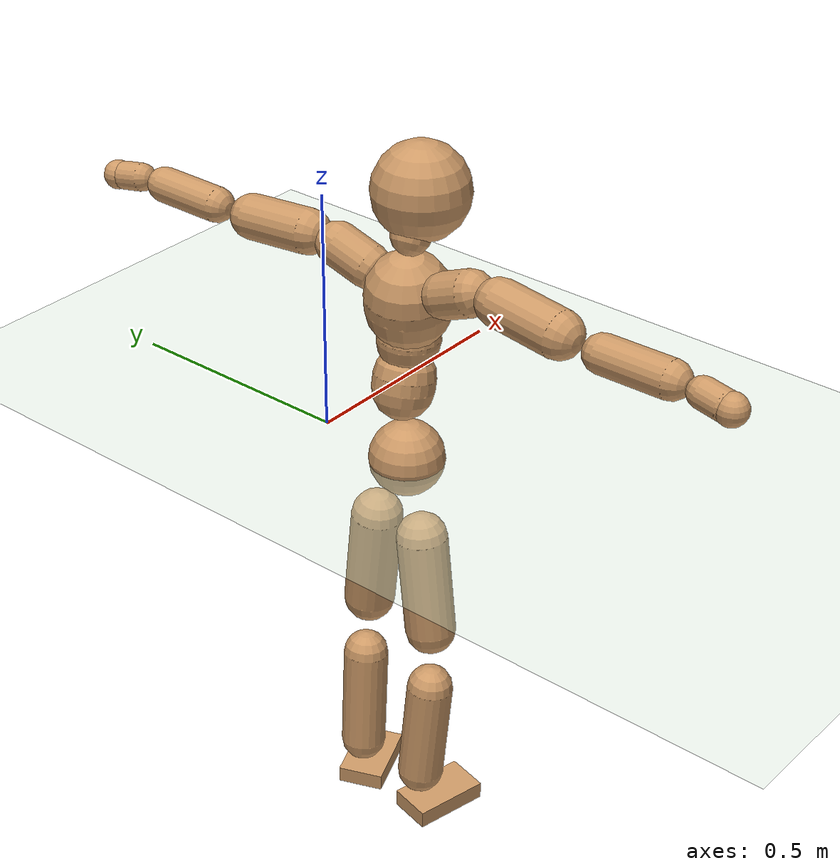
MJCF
<mujoco model="humanoid">
  <compiler coordinate="local" angle="radian"/>
  <default>
    <joint damping="0.0" armature="0.01" stiffness="0.0" limited="true"/>
    <geom conaffinity="1" condim="3" contype="7" margin="0.001" rgba="0.8 0.6 .4 1"/>
  </default>
  <asset>
    <texture type="skybox" builtin="gradient" rgb1=".4 .5 .6" rgb2="0 0 0" width="100" height="100"/>
    <texture builtin="flat" height="1278" mark="cross" markrgb="1 1 1" name="texgeom" random="0.01" rgb1="0.8 0.6 0.4" rgb2="0.8 0.6 0.4" type="cube" width="127"/>
    <texture builtin="checker" height="100" name="texplane" rgb1="0 0 0" rgb2="0.8 0.8 0.8" type="2d" width="100"/>
    <material name="MatPlane" reflectance="0.5" shininess="1" specular="1" texrepeat="60 60" texture="texplane"/>
    <material name="geom" texture="texgeom" texuniform="true"/>
  </asset>
  <worldbody>
    <light cutoff="100" diffuse="1 1 1" dir="-0 0 -1.3" directional="true" exponent="1" pos="0 0 1.3" specular=".1 .1 .1"/>
    <geom conaffinity="1" condim="3" name="floor" pos="0 0 0" rgba="0.8 0.9 0.8 1" size="100 100 .2" type="plane" material="MatPlane"/>
    <body name="Pelvis" pos="-0.0008 -0.2101 0.0058">
      <freejoint name="Pelvis"/>
      <geom type="sphere" contype="1" conaffinity="1" density="500" size="0.0766" pos="0.0000 0.0000 0.0000" name="Pelvis"/>
      <body name="L_Hip" pos="-0.0253 0.048 -0.0732">
        <joint name="L_Hip_x" type="hinge" pos="0 0 0" axis="1 0 0" stiffness="800" damping="80" armature="0.02" range="-180.0000 180.0000"/>
        <joint name="L_Hip_y" type="hinge" pos="0 0 0" axis="0 1 0" stiffness="800" damping="80" armature="0.02" range="-180.0000 180.0000"/>
        <joint name="L_Hip_z" type="hinge" pos="0 0 0" axis="0 0 1" stiffness="800" damping="80" armature="0.02" range="-180.0000 180.0000"/>
        <geom type="capsule" contype="1" conaffinity="1" density="500" fromto="0.0017 0.0089 -0.0732 0.0067 0.0357 -0.2928" size="0.0526" name="L_Hip"/>
        <body name="L_Knee" pos="0.0084 0.0447 -0.366">
          <joint name="L_Knee_x" type="hinge" pos="0 0 0" axis="1 0 0" stiffness="800" damping="80" armature="0.02" range="-180.0000 180.0000"/>
          <joint name="L_Knee_y" type="hinge" pos="0 0 0" axis="0 1 0" stiffness="800" damping="80" armature="0.02" range="-180.0000 180.0000"/>
          <joint name="L_Knee_z" type="hinge" pos="0 0 0" axis="0 0 1" stiffness="800" damping="80" armature="0.02" range="-180.0000 180.0000"/>
          <geom type="capsule" contype="1" conaffinity="1" density="500" fromto="-0.0061 -0.0020 -0.0743 -0.0244 -0.0081 -0.2971" size="0.0469" name="L_Knee"/>
          <body name="L_Ankle" pos="-0.0305 -0.0101 -0.3714">
            <joint name="L_Ankle_x" type="hinge" pos="0 0 0" axis="1 0 0" stiffness="800" damping="80" armature="0.02" range="-180.0000 180.0000"/>
            <joint name="L_Ankle_y" type="hinge" pos="0 0 0" axis="0 1 0" stiffness="800" damping="80" armature="0.02" range="-180.0000 180.0000"/>
            <joint name="L_Ankle_z" type="hinge" pos="0 0 0" axis="0 0 1" stiffness="800" damping="80" armature="0.02" range="-180.0000 180.0000"/>
            <geom type="box" contype="1" conaffinity="1" density="500" pos="0.0532 0.0214 -0.0267" size="0.0748 0.0481 0.018" quat="0.9818 0.0000 0.0000 0.1898" name="L_Ankle"/>
            <body name="L_Toe" pos="0.1063 0.0427 -0.0533">
              <joint name="L_Toe_x" type="hinge" pos="0 0 0" axis="1 0 0" stiffness="500" damping="50" armature="0.02" range="-180.0000 180.0000"/>
              <joint name="L_Toe_y" type="hinge" pos="0 0 0" axis="0 1 0" stiffness="500" damping="50" armature="0.02" range="-180.0000 180.0000"/>
              <joint name="L_Toe_z" type="hinge" pos="0 0 0" axis="0 0 1" stiffness="500" damping="50" armature="0.02" range="-180.0000 180.0000"/>
              <geom type="box" contype="1" conaffinity="1" density="500" pos="0.0000 0.0000 0.0279" size="0.001 0.0023 0.001" quat="0.9809 0.0000 0.0000 0.1945" name="L_Toe"/>
            </body>
          </body>
        </body>
      </body>
      <body name="R_Hip" pos="-0.0231 -0.0505 -0.0803">
        <joint name="R_Hip_x" type="hinge" pos="0 0 0" axis="1 0 0" stiffness="800" damping="80" armature="0.02" range="-180.0000 180.0000"/>
        <joint name="R_Hip_y" type="hinge" pos="0 0 0" axis="0 1 0" stiffness="800" damping="80" armature="0.02" range="-180.0000 180.0000"/>
        <joint name="R_Hip_z" type="hinge" pos="0 0 0" axis="0 0 1" stiffness="800" damping="80" armature="0.02" range="-180.0000 180.0000"/>
        <geom type="capsule" contype="1" conaffinity="1" density="500" fromto="-0.0005 -0.0085 -0.0714 -0.0019 -0.0342 -0.2858" size="0.0518" name="R_Hip"/>
        <body name="R_Knee" pos="-0.0023 -0.0427 -0.3572">
          <joint name="R_Knee_x" type="hinge" pos="0 0 0" axis="1 0 0" stiffness="800" damping="80" armature="0.02" range="-180.0000 180.0000"/>
          <joint name="R_Knee_y" type="hinge" pos="0 0 0" axis="0 1 0" stiffness="800" damping="80" armature="0.02" range="-180.0000 180.0000"/>
          <joint name="R_Knee_z" type="hinge" pos="0 0 0" axis="0 0 1" stiffness="800" damping="80" armature="0.02" range="-180.0000 180.0000"/>
          <geom type="capsule" contype="1" conaffinity="1" density="500" fromto="-0.0055 0.0031 -0.0729 -0.0222 0.0126 -0.2917" size="0.0477" name="R_Knee"/>
          <body name="R_Ankle" pos="-0.0277 0.0157 -0.3647">
            <joint name="R_Ankle_x" type="hinge" pos="0 0 0" axis="1 0 0" stiffness="800" damping="80" armature="0.02" range="-180.0000 180.0000"/>
            <joint name="R_Ankle_y" type="hinge" pos="0 0 0" axis="0 1 0" stiffness="800" damping="80" armature="0.02" range="-180.0000 180.0000"/>
            <joint name="R_Ankle_z" type="hinge" pos="0 0 0" axis="0 0 1" stiffness="800" damping="80" armature="0.02" range="-180.0000 180.0000"/>
            <geom type="box" contype="1" conaffinity="1" density="500" pos="0.0570 -0.0130 -0.0286" size="0.0798 0.0454 0.0192" quat="0.9937 0.0000 0.0000 -0.1118" name="R_Ankle"/>
            <body name="R_Toe" pos="0.1141 -0.026 -0.0571">
              <joint name="R_Toe_x" type="hinge" pos="0 0 0" axis="1 0 0" stiffness="500" damping="50" armature="0.02" range="-180.0000 180.0000"/>
              <joint name="R_Toe_y" type="hinge" pos="0 0 0" axis="0 1 0" stiffness="500" damping="50" armature="0.02" range="-180.0000 180.0000"/>
              <joint name="R_Toe_z" type="hinge" pos="0 0 0" axis="0 0 1" stiffness="500" damping="50" armature="0.02" range="-180.0000 180.0000"/>
              <geom type="box" contype="1" conaffinity="1" density="500" pos="0.0000 0.0000 0.0307" size="0.0009 0.0022 0.0011" quat="0.9948 0.0000 0.0000 -0.1017" name="R_Toe"/>
            </body>
          </body>
        </body>
      </body>
      <body name="Torso" pos="-0.0185 0.0036 0.1058">
        <joint name="Torso_x" type="hinge" pos="0 0 0" axis="1 0 0" stiffness="1000" damping="100" armature="0.02" range="-180.0000 180.0000"/>
        <joint name="Torso_y" type="hinge" pos="0 0 0" axis="0 1 0" stiffness="1000" damping="100" armature="0.02" range="-180.0000 180.0000"/>
        <joint name="Torso_z" type="hinge" pos="0 0 0" axis="0 0 1" stiffness="1000" damping="100" armature="0.02" range="-180.0000 180.0000"/>
        <geom type="capsule" contype="1" conaffinity="1" density="500" fromto="0.0177 0.0022 0.0760 0.0118 0.0014 0.0506" size="0.0618" name="Torso"/>
        <body name="Spine" pos="0.0294 0.0036 0.1266">
          <joint name="Spine_x" type="hinge" pos="0 0 0" axis="1 0 0" stiffness="1000" damping="100" armature="0.02" range="-180.0000 180.0000"/>
          <joint name="Spine_y" type="hinge" pos="0 0 0" axis="0 1 0" stiffness="1000" damping="100" armature="0.02" range="-180.0000 180.0000"/>
          <joint name="Spine_z" type="hinge" pos="0 0 0" axis="0 0 1" stiffness="1000" damping="100" armature="0.02" range="-180.0000 180.0000"/>
          <geom type="capsule" contype="1" conaffinity="1" density="500" fromto="0.0009 -0.0008 0.0301 0.0006 -0.0005 0.0200" size="0.0626" name="Spine"/>
          <body name="Chest" pos="0.0015 -0.0014 0.0501">
            <joint name="Chest_x" type="hinge" pos="0 0 0" axis="1 0 0" stiffness="1000" damping="100" armature="0.02" range="-180.0000 180.0000"/>
            <joint name="Chest_y" type="hinge" pos="0 0 0" axis="0 1 0" stiffness="1000" damping="100" armature="0.02" range="-180.0000 180.0000"/>
            <joint name="Chest_z" type="hinge" pos="0 0 0" axis="0 0 1" stiffness="1000" damping="100" armature="0.02" range="-180.0000 180.0000"/>
            <geom type="capsule" contype="1" conaffinity="1" density="500" fromto="-0.0104 -0.0055 0.0745 -0.0069 -0.0037 0.0497" size="0.085" name="Chest"/>
            <body name="Neck" pos="-0.0209 -0.0141 0.1803">
              <joint name="Neck_x" type="hinge" pos="0 0 0" axis="1 0 0" stiffness="500" damping="50" armature="0.02" range="-180.0000 180.0000"/>
              <joint name="Neck_y" type="hinge" pos="0 0 0" axis="0 1 0" stiffness="500" damping="50" armature="0.02" range="-180.0000 180.0000"/>
              <joint name="Neck_z" type="hinge" pos="0 0 0" axis="0 0 1" stiffness="500" damping="50" armature="0.02" range="-180.0000 180.0000"/>
              <geom type="capsule" contype="1" conaffinity="1" density="500" fromto="0.0092 0.0018 0.0179 0.0366 0.0071 0.0717" size="0.04" name="Neck"/>
              <body name="Head" pos="0.0458 0.0088 0.0896">
                <joint name="Head_x" type="hinge" pos="0 0 0" axis="1 0 0" stiffness="500" damping="50" armature="0.02" range="-180.0000 180.0000"/>
                <joint name="Head_y" type="hinge" pos="0 0 0" axis="0 1 0" stiffness="500" damping="50" armature="0.02" range="-180.0000 180.0000"/>
                <joint name="Head_z" type="hinge" pos="0 0 0" axis="0 0 1" stiffness="500" damping="50" armature="0.02" range="-180.0000 180.0000"/>
                <geom type="sphere" contype="1" conaffinity="1" density="500" size="0.0954" pos="0.0000 0.0000 0.0000" name="Head"/>
              </body>
            </body>
            <body name="L_Thorax" pos="-0.0135 0.0649 0.096">
              <joint name="L_Thorax_x" type="hinge" pos="0 0 0" axis="1 0 0" stiffness="500" damping="50" armature="0.02" range="-180.0000 180.0000"/>
              <joint name="L_Thorax_y" type="hinge" pos="0 0 0" axis="0 1 0" stiffness="500" damping="50" armature="0.02" range="-180.0000 180.0000"/>
              <joint name="L_Thorax_z" type="hinge" pos="0 0 0" axis="0 0 1" stiffness="500" damping="50" armature="0.02" range="-180.0000 180.0000"/>
              <geom type="capsule" contype="1" conaffinity="1" density="500" fromto="-0.0027 0.0224 0.0088 -0.0109 0.0894 0.0352" size="0.0443" name="L_Thorax"/>
              <body name="L_Shoulder" pos="-0.0136 0.1118 0.044">
                <joint name="L_Shoulder_x" type="hinge" pos="0 0 0" axis="1 0 0" stiffness="500" damping="50" armature="0.02" range="-720.0000 720.0000"/>
                <joint name="L_Shoulder_y" type="hinge" pos="0 0 0" axis="0 1 0" stiffness="500" damping="50" armature="0.02" range="-720.0000 720.0000"/>
                <joint name="L_Shoulder_z" type="hinge" pos="0 0 0" axis="0 0 1" stiffness="500" damping="50" armature="0.02" range="-720.0000 720.0000"/>
                <geom type="capsule" contype="1" conaffinity="1" density="500" fromto="-0.0025 0.0464 -0.0029 -0.0101 0.1855 -0.0116" size="0.045" name="L_Shoulder"/>
                <body name="L_Elbow" pos="-0.0127 0.2319 -0.0145">
                  <joint name="L_Elbow_x" type="hinge" pos="0 0 0" axis="1 0 0" stiffness="500" damping="50" armature="0.02" range="-720.0000 720.0000"/>
                  <joint name="L_Elbow_y" type="hinge" pos="0 0 0" axis="0 1 0" stiffness="500" damping="50" armature="0.02" range="-720.0000 720.0000"/>
                  <joint name="L_Elbow_z" type="hinge" pos="0 0 0" axis="0 0 1" stiffness="500" damping="50" armature="0.02" range="-720.0000 720.0000"/>
                  <geom type="capsule" contype="1" conaffinity="1" density="500" fromto="-0.0021 0.0459 0.0016 -0.0086 0.1835 0.0062" size="0.0356" name="L_Elbow"/>
                  <body name="L_Wrist" pos="-0.0107 0.2294 0.0078">
                    <joint name="L_Wrist_x" type="hinge" pos="0 0 0" axis="1 0 0" stiffness="300" damping="30" armature="0.02" range="-180.0000 180.0000"/>
                    <joint name="L_Wrist_y" type="hinge" pos="0 0 0" axis="0 1 0" stiffness="300" damping="30" armature="0.02" range="-180.0000 180.0000"/>
                    <joint name="L_Wrist_z" type="hinge" pos="0 0 0" axis="0 0 1" stiffness="300" damping="30" armature="0.02" range="-180.0000 180.0000"/>
                    <geom type="capsule" contype="1" conaffinity="1" density="500" fromto="-0.0026 0.0146 -0.0018 -0.0104 0.0582 -0.0072" size="0.0286" name="L_Wrist"/>
                    <body name="L_Hand" pos="-0.0131 0.0728 -0.009">
                      <joint name="L_Hand_x" type="hinge" pos="0 0 0" axis="1 0 0" stiffness="300" damping="30" armature="0.02" range="-180.0000 180.0000"/>
                      <joint name="L_Hand_y" type="hinge" pos="0 0 0" axis="0 1 0" stiffness="300" damping="30" armature="0.02" range="-180.0000 180.0000"/>
                      <joint name="L_Hand_z" type="hinge" pos="0 0 0" axis="0 0 1" stiffness="300" damping="30" armature="0.02" range="-180.0000 180.0000"/>
                      <geom type="sphere" contype="1" conaffinity="1" density="500" size="0.0299" pos="0.0000 0.0000 0.0000" name="L_Hand"/>
                    </body>
                  </body>
                </body>
              </body>
            </body>
            <body name="R_Thorax" pos="-0.0176 -0.0782 0.0961">
              <joint name="R_Thorax_x" type="hinge" pos="0 0 0" axis="1 0 0" stiffness="500" damping="50" armature="0.02" range="-180.0000 180.0000"/>
              <joint name="R_Thorax_y" type="hinge" pos="0 0 0" axis="0 1 0" stiffness="500" damping="50" armature="0.02" range="-180.0000 180.0000"/>
              <joint name="R_Thorax_z" type="hinge" pos="0 0 0" axis="0 0 1" stiffness="500" damping="50" armature="0.02" range="-180.0000 180.0000"/>
              <geom type="capsule" contype="1" conaffinity="1" density="500" fromto="-0.0010 -0.0207 0.0091 -0.0039 -0.0827 0.0363" size="0.0449" name="R_Thorax"/>
              <body name="R_Shoulder" pos="-0.0049 -0.1034 0.0454">
                <joint name="R_Shoulder_x" type="hinge" pos="0 0 0" axis="1 0 0" stiffness="500" damping="50" armature="0.02" range="-720.0000 720.0000"/>
                <joint name="R_Shoulder_y" type="hinge" pos="0 0 0" axis="0 1 0" stiffness="500" damping="50" armature="0.02" range="-720.0000 720.0000"/>
                <joint name="R_Shoulder_z" type="hinge" pos="0 0 0" axis="0 0 1" stiffness="500" damping="50" armature="0.02" range="-720.0000 720.0000"/>
                <geom type="capsule" contype="1" conaffinity="1" density="500" fromto="-0.0038 -0.0465 -0.0032 -0.0154 -0.1859 -0.0127" size="0.0467" name="R_Shoulder"/>
                <body name="R_Elbow" pos="-0.0192 -0.2323 -0.0159">
                  <joint name="R_Elbow_x" type="hinge" pos="0 0 0" axis="1 0 0" stiffness="500" damping="50" armature="0.02" range="-720.0000 720.0000"/>
                  <joint name="R_Elbow_y" type="hinge" pos="0 0 0" axis="0 1 0" stiffness="500" damping="50" armature="0.02" range="-720.0000 720.0000"/>
                  <joint name="R_Elbow_z" type="hinge" pos="0 0 0" axis="0 0 1" stiffness="500" damping="50" armature="0.02" range="-720.0000 720.0000"/>
                  <geom type="capsule" contype="1" conaffinity="1" density="500" fromto="-0.0012 -0.0475 0.0014 -0.0047 -0.1901 0.0054" size="0.0368" name="R_Elbow"/>
                  <body name="R_Wrist" pos="-0.0059 -0.2376 0.0068">
                    <joint name="R_Wrist_x" type="hinge" pos="0 0 0" axis="1 0 0" stiffness="300" damping="30" armature="0.02" range="-180.0000 180.0000"/>
                    <joint name="R_Wrist_y" type="hinge" pos="0 0 0" axis="0 1 0" stiffness="300" damping="30" armature="0.02" range="-180.0000 180.0000"/>
                    <joint name="R_Wrist_z" type="hinge" pos="0 0 0" axis="0 0 1" stiffness="300" damping="30" armature="0.02" range="-180.0000 180.0000"/>
                    <geom type="capsule" contype="1" conaffinity="1" density="500" fromto="-0.0017 -0.0151 -0.0014 -0.0070 -0.0602 -0.0057" size="0.0294" name="R_Wrist"/>
                    <body name="R_Hand" pos="-0.0087 -0.0753 -0.0071">
                      <joint name="R_Hand_x" type="hinge" pos="0 0 0" axis="1 0 0" stiffness="300" damping="30" armature="0.02" range="-180.0000 180.0000"/>
                      <joint name="R_Hand_y" type="hinge" pos="0 0 0" axis="0 1 0" stiffness="300" damping="30" armature="0.02" range="-180.0000 180.0000"/>
                      <joint name="R_Hand_z" type="hinge" pos="0 0 0" axis="0 0 1" stiffness="300" damping="30" armature="0.02" range="-180.0000 180.0000"/>
                      <geom type="sphere" contype="1" conaffinity="1" density="500" size="0.0306" pos="0.0000 0.0000 0.0000" name="R_Hand"/>
                    </body>
                  </body>
                </body>
              </body>
            </body>
          </body>
        </body>
      </body>
    </body>
  </worldbody>
  <actuator>
    <motor name="L_Hip_x" joint="L_Hip_x" gear="500"/>
    <motor name="L_Hip_y" joint="L_Hip_y" gear="500"/>
    <motor name="L_Hip_z" joint="L_Hip_z" gear="500"/>
    <motor name="L_Knee_x" joint="L_Knee_x" gear="500"/>
    <motor name="L_Knee_y" joint="L_Knee_y" gear="500"/>
    <motor name="L_Knee_z" joint="L_Knee_z" gear="500"/>
    <motor name="L_Ankle_x" joint="L_Ankle_x" gear="500"/>
    <motor name="L_Ankle_y" joint="L_Ankle_y" gear="500"/>
    <motor name="L_Ankle_z" joint="L_Ankle_z" gear="500"/>
    <motor name="L_Toe_x" joint="L_Toe_x" gear="500"/>
    <motor name="L_Toe_y" joint="L_Toe_y" gear="500"/>
    <motor name="L_Toe_z" joint="L_Toe_z" gear="500"/>
    <motor name="R_Hip_x" joint="R_Hip_x" gear="500"/>
    <motor name="R_Hip_y" joint="R_Hip_y" gear="500"/>
    <motor name="R_Hip_z" joint="R_Hip_z" gear="500"/>
    <motor name="R_Knee_x" joint="R_Knee_x" gear="500"/>
    <motor name="R_Knee_y" joint="R_Knee_y" gear="500"/>
    <motor name="R_Knee_z" joint="R_Knee_z" gear="500"/>
    <motor name="R_Ankle_x" joint="R_Ankle_x" gear="500"/>
    <motor name="R_Ankle_y" joint="R_Ankle_y" gear="500"/>
    <motor name="R_Ankle_z" joint="R_Ankle_z" gear="500"/>
    <motor name="R_Toe_x" joint="R_Toe_x" gear="500"/>
    <motor name="R_Toe_y" joint="R_Toe_y" gear="500"/>
    <motor name="R_Toe_z" joint="R_Toe_z" gear="500"/>
    <motor name="Torso_x" joint="Torso_x" gear="500"/>
    <motor name="Torso_y" joint="Torso_y" gear="500"/>
    <motor name="Torso_z" joint="Torso_z" gear="500"/>
    <motor name="Spine_x" joint="Spine_x" gear="500"/>
    <motor name="Spine_y" joint="Spine_y" gear="500"/>
    <motor name="Spine_z" joint="Spine_z" gear="500"/>
    <motor name="Chest_x" joint="Chest_x" gear="500"/>
    <motor name="Chest_y" joint="Chest_y" gear="500"/>
    <motor name="Chest_z" joint="Chest_z" gear="500"/>
    <motor name="Neck_x" joint="Neck_x" gear="500"/>
    <motor name="Neck_y" joint="Neck_y" gear="500"/>
    <motor name="Neck_z" joint="Neck_z" gear="500"/>
    <motor name="Head_x" joint="Head_x" gear="500"/>
    <motor name="Head_y" joint="Head_y" gear="500"/>
    <motor name="Head_z" joint="Head_z" gear="500"/>
    <motor name="L_Thorax_x" joint="L_Thorax_x" gear="500"/>
    <motor name="L_Thorax_y" joint="L_Thorax_y" gear="500"/>
    <motor name="L_Thorax_z" joint="L_Thorax_z" gear="500"/>
    <motor name="L_Shoulder_x" joint="L_Shoulder_x" gear="500"/>
    <motor name="L_Shoulder_y" joint="L_Shoulder_y" gear="500"/>
    <motor name="L_Shoulder_z" joint="L_Shoulder_z" gear="500"/>
    <motor name="L_Elbow_x" joint="L_Elbow_x" gear="500"/>
    <motor name="L_Elbow_y" joint="L_Elbow_y" gear="500"/>
    <motor name="L_Elbow_z" joint="L_Elbow_z" gear="500"/>
    <motor name="L_Wrist_x" joint="L_Wrist_x" gear="500"/>
    <motor name="L_Wrist_y" joint="L_Wrist_y" gear="500"/>
    <motor name="L_Wrist_z" joint="L_Wrist_z" gear="500"/>
    <motor name="L_Hand_x" joint="L_Hand_x" gear="500"/>
    <motor name="L_Hand_y" joint="L_Hand_y" gear="500"/>
    <motor name="L_Hand_z" joint="L_Hand_z" gear="500"/>
    <motor name="R_Thorax_x" joint="R_Thorax_x" gear="500"/>
    <motor name="R_Thorax_y" joint="R_Thorax_y" gear="500"/>
    <motor name="R_Thorax_z" joint="R_Thorax_z" gear="500"/>
    <motor name="R_Shoulder_x" joint="R_Shoulder_x" gear="500"/>
    <motor name="R_Shoulder_y" joint="R_Shoulder_y" gear="500"/>
    <motor name="R_Shoulder_z" joint="R_Shoulder_z" gear="500"/>
    <motor name="R_Elbow_x" joint="R_Elbow_x" gear="500"/>
    <motor name="R_Elbow_y" joint="R_Elbow_y" gear="500"/>
    <motor name="R_Elbow_z" joint="R_Elbow_z" gear="500"/>
    <motor name="R_Wrist_x" joint="R_Wrist_x" gear="500"/>
    <motor name="R_Wrist_y" joint="R_Wrist_y" gear="500"/>
    <motor name="R_Wrist_z" joint="R_Wrist_z" gear="500"/>
    <motor name="R_Hand_x" joint="R_Hand_x" gear="500"/>
    <motor name="R_Hand_y" joint="R_Hand_y" gear="500"/>
    <motor name="R_Hand_z" joint="R_Hand_z" gear="500"/>
  </actuator>
  <contact>
    <exclude body1="Torso" body2="Chest"/>
    <exclude body1="Head" body2="Chest"/>
    <exclude body1="R_Knee" body2="R_Toe"/>
    <exclude body1="R_Knee" body2="L_Ankle"/>
    <exclude body1="R_Knee" body2="L_Toe"/>
    <exclude body1="L_Knee" body2="L_Toe"/>
    <exclude body1="L_Knee" body2="R_Ankle"/>
    <exclude body1="L_Knee" body2="R_Toe"/>
    <exclude body1="L_Shoulder" body2="Chest"/>
    <exclude body1="R_Shoulder" body2="Chest"/>
  </contact>
  <sensor/>
  <size njmax="700" nconmax="700"/>
</mujoco>
